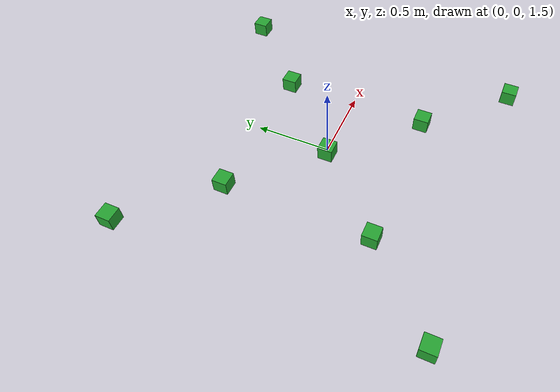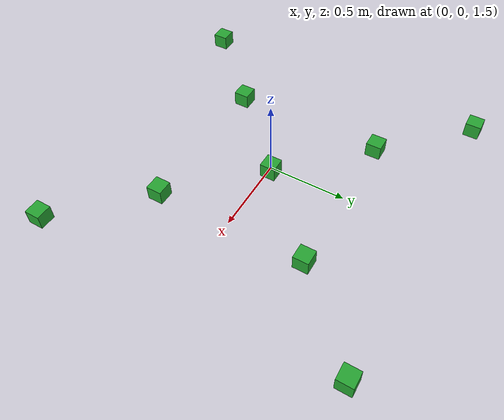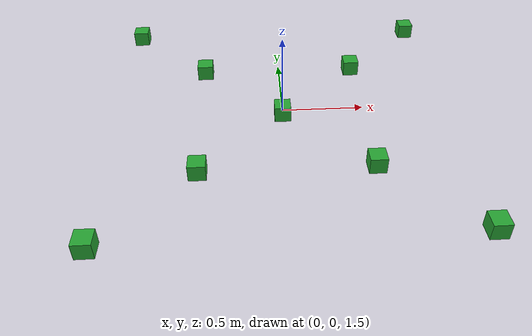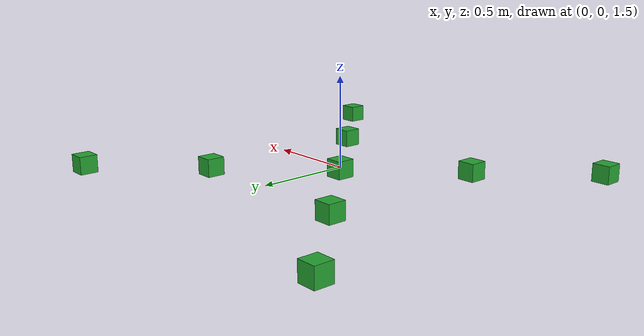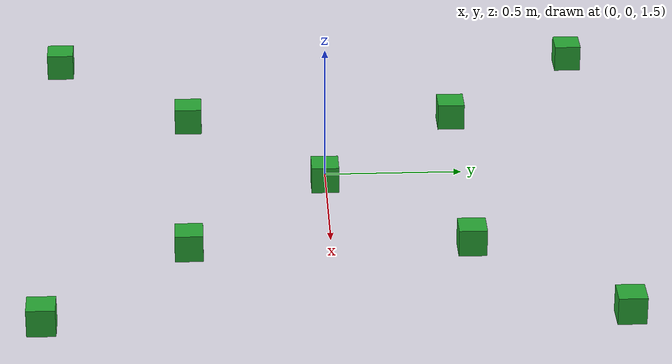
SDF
<sdf version="1.4">
 <world name="europa">
  <include><uri>model://sun</uri></include>
  <include><uri>model://small_box</uri><name>small_box_1</name><pose>0.0 0.0 1.5 0 0 0</pose></include>
  <include><uri>model://small_box</uri><name>small_box_2</name><pose>0.5 0.5 1.5 0 0 0</pose></include>
  <include><uri>model://small_box</uri><name>small_box_3</name><pose>1.0 1.0 1.5 0 0 0</pose></include>
  <include><uri>model://small_box</uri><name>small_box_4</name><pose>-0.5 -0.5 1.5 0 0 0</pose></include>
  <include><uri>model://small_box</uri><name>small_box_5</name><pose>-1.0 -1.0 1.5 0 0 0</pose></include>
  <include><uri>model://small_box</uri><name>small_box_6</name><pose>-0.5 0.5 1.5 0 0 0</pose></include>
  <include><uri>model://small_box</uri><name>small_box_7</name><pose>-1.0 1.0 1.5 0 0 0</pose></include>
  <include><uri>model://small_box</uri><name>small_box_8</name><pose>0.5 -0.5 1.5 0 0 0</pose></include>
  <include><uri>model://small_box</uri><name>small_box_9</name><pose>1.0 -1.0 1.5 0 0 0</pose></include>
 </world>
</sdf>

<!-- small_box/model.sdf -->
<sdf version="1.7">
  <model name='small_box'>
    <link name='link'>
      <inertial>
        <mass>1</mass>
        <inertia>
          <ixx>0.166667</ixx>
          <ixy>0</ixy>
          <ixz>0</ixz>
          <iyy>0.166667</iyy>
          <iyz>0</iyz>
          <izz>0.166667</izz>
        </inertia>
        <pose>0 0 0 0 -0 0</pose>
      </inertial>
      <collision name='collision'>
        <geometry>
          <box>
            <size>0.1 0.1 0.1</size>
          </box>
        </geometry>
        <max_contacts>10</max_contacts>
        <surface>
          <contact>
            <ode/>
          </contact>
          <bounce/>
          <friction>
            <torsional>
              <ode/>
            </torsional>
            <ode/>
          </friction>
        </surface>
      </collision>
      <visual name='visual'>
        <geometry>
          <box>
            <size>0.1 0.1 0.1</size>
          </box>
        </geometry>
        <material>
          <script>
            <name>Gazebo/Green</name>
            <uri>file://media/materials/scripts/gazebo.material</uri>
          </script>
        </material>
      </visual>
      <self_collide>0</self_collide>
      <enable_wind>0</enable_wind>
      <kinematic>0</kinematic>
    </link>
  </model>
</sdf>
